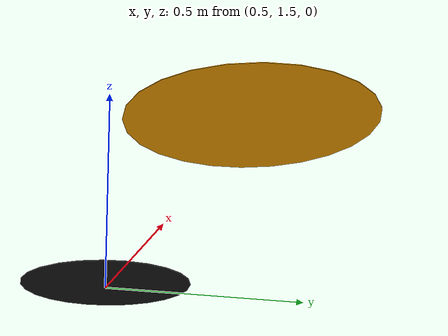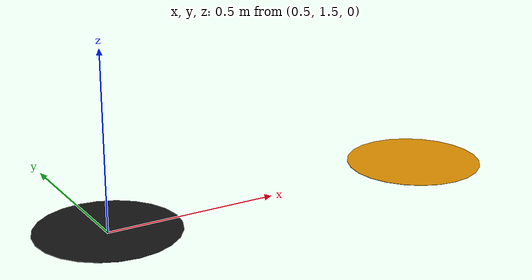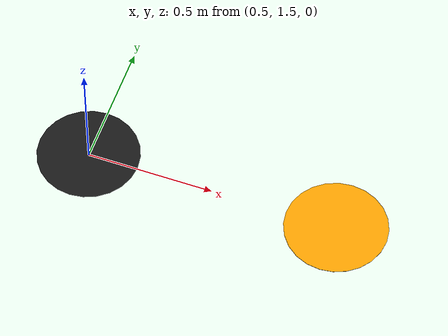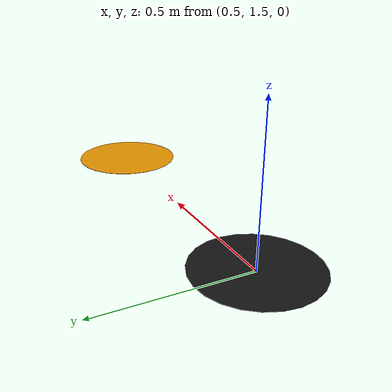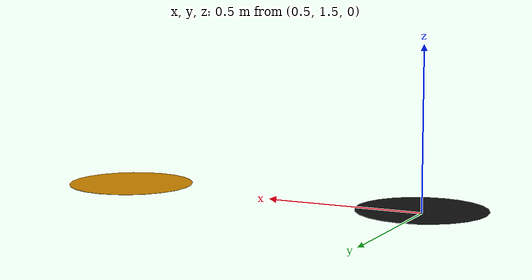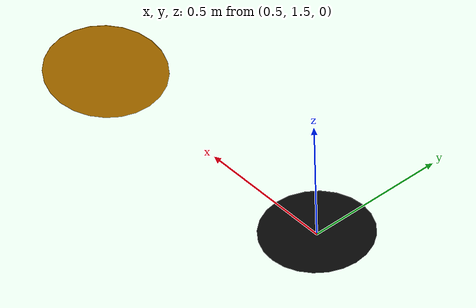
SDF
<?xml version="1.0" ?>
<sdf version="1.7">
  <model name="forest_2_ball_state_9">
    <pose>0 0 0.01 0 0 0</pose>
    <static>true</static>

    <!-- Top-left ball -->
    <link name="tree_1">
      <pose>0.5 1.5 -0.0005 0 0 0</pose>
      <visual name="tree_1_visual">
        <geometry>
          <cylinder>
            <radius>0.2</radius>
            <length>0.001</length>
          </cylinder>
        </geometry>
        <material>
          <ambient>0.1 0.1 0.1 1</ambient>
          <diffuse>0.1 0.1 0.1 1</diffuse>
        </material>
      </visual>
    </link>

    <!-- Top-right ball -->
    <link name="tree_2">
      <pose>1.5 1.5 -0.0005 0 0 0</pose>
      <visual name="tree_2_visual">
        <geometry>
          <cylinder>
            <radius>0.2</radius>
            <length>0.001</length>
          </cylinder>
        </geometry>
        <material>
          <ambient>1.0 0.65 0.0 1</ambient>
          <diffuse>1.0 0.65 0.0 1</diffuse>
        </material>
      </visual>
    </link>

  </model>
</sdf>
